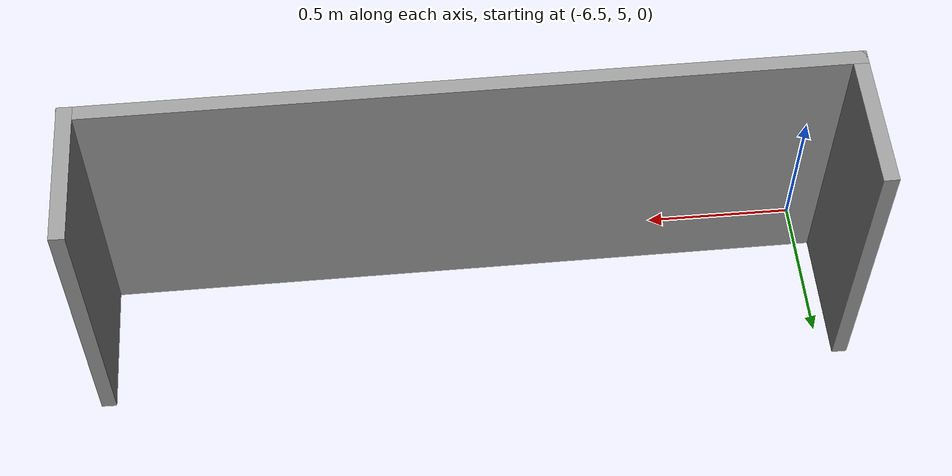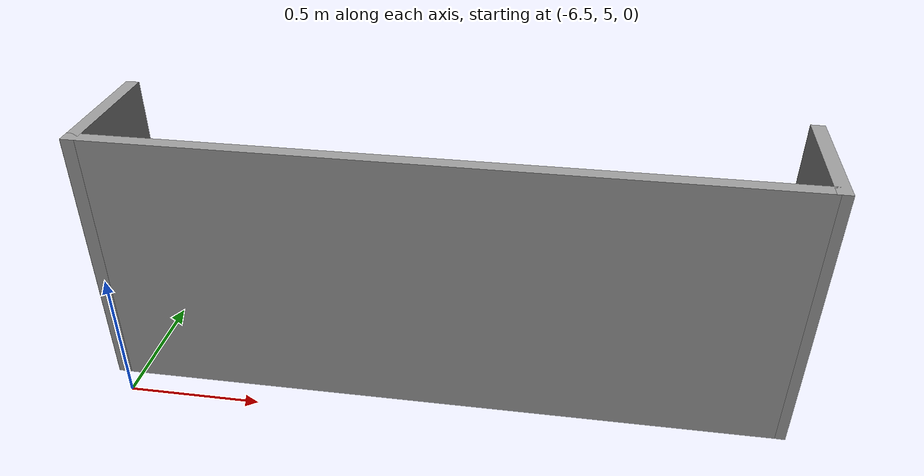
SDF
<?xml version='1.0'?>
<sdf version='1.7'>
  <model name='add_wall3'>
    <pose>-3.29812 2.7975 0 0 -0 0</pose>
    <link name='Wall_4'>
      <collision name='Wall_4_Collision'>
        <geometry>
          <box>
            <size>2.52 0.05 1</size>
          </box>
        </geometry>
        <pose>0 0 0.5 0 -0 0</pose>
      </collision>
      <visual name='Wall_4_Visual'>
        <pose>0 0 0.5 0 -0 0</pose>
        <geometry>
          <box>
            <size>2.52 0.05 1</size>
          </box>
        </geometry>
        <material>
          <script>
            <uri>file://media/materials/scripts/gazebo.material</uri>
            <name>Gazebo/Grey</name>
          </script>
          <ambient>1 1 1 1</ambient>
        </material>
        <meta>
          <layer>0</layer>
        </meta>
      </visual>
      <pose>-2.03812 2.32257 0 0 -0 5.5e-05</pose>
    </link>
    <link name='Wall_6'>
      <collision name='Wall_6_Collision'>
        <geometry>
          <box>
            <size>0.489391 0.05 1</size>
          </box>
        </geometry>
        <pose>0 0 0.5 0 -0 0</pose>
      </collision>
      <visual name='Wall_6_Visual'>
        <pose>0 0 0.5 0 -0 0</pose>
        <geometry>
          <box>
            <size>0.489391 0.05 1</size>
          </box>
        </geometry>
        <material>
          <script>
            <uri>file://media/materials/scripts/gazebo.material</uri>
            <name>Gazebo/Grey</name>
          </script>
          <ambient>1 1 1 1</ambient>
        </material>
        <meta>
          <layer>0</layer>
        </meta>
      </visual>
      <pose>-0.799121 2.54207 0 0 -0 1.55146</pose>
    </link>
    <link name='Wall_8'>
      <collision name='Wall_8_Collision'>
        <geometry>
          <box>
            <size>0.5 0.05 1</size>
          </box>
        </geometry>
        <pose>0 0 0.5 0 -0 0</pose>
      </collision>
      <visual name='Wall_8_Visual'>
        <pose>0 0 0.5 0 -0 0</pose>
        <geometry>
          <box>
            <size>0.5 0.05 1</size>
          </box>
        </geometry>
        <material>
          <script>
            <uri>file://media/materials/scripts/gazebo.material</uri>
            <name>Gazebo/Grey</name>
          </script>
          <ambient>1 1 1 1</ambient>
        </material>
        <meta>
          <layer>0</layer>
        </meta>
      </visual>
      <pose>-3.27288 2.5475 0 0 -0 1.5708</pose>
    </link>
    <static>1</static>
  </model>
</sdf>
